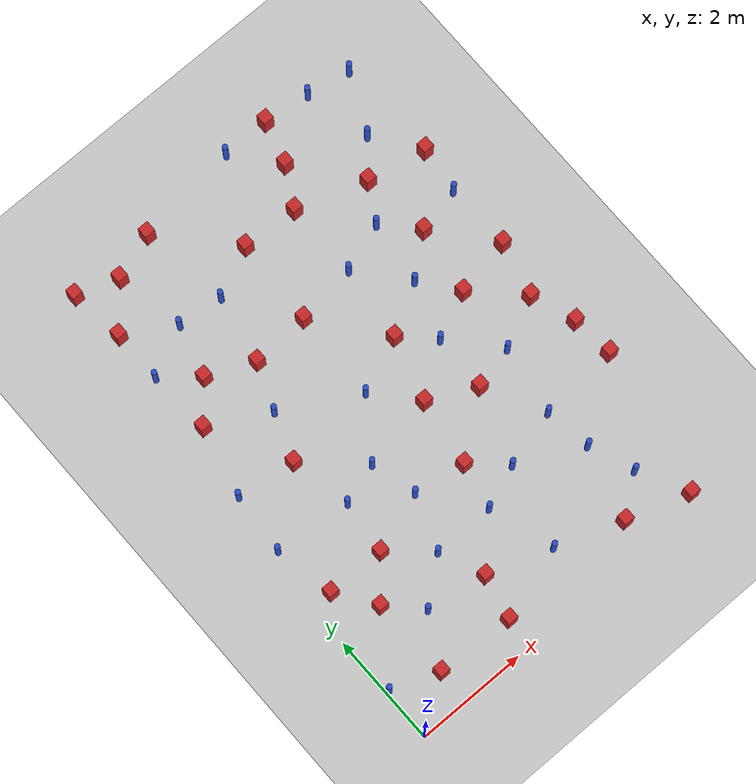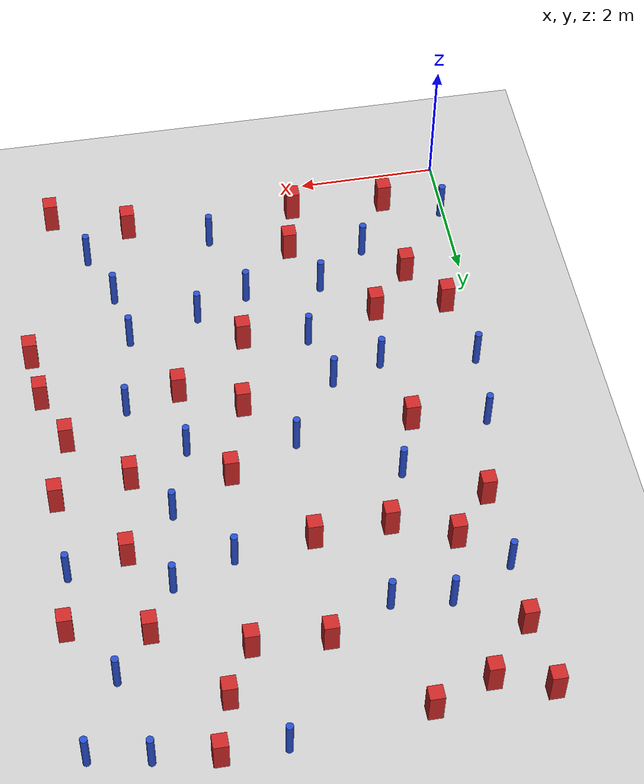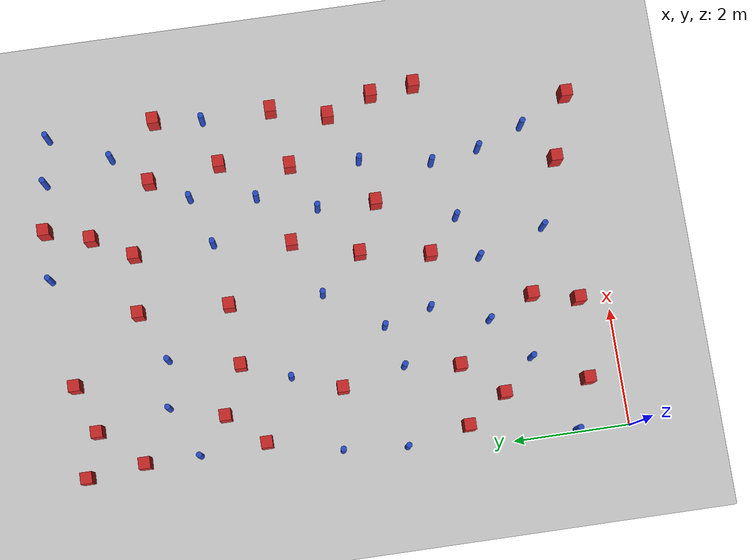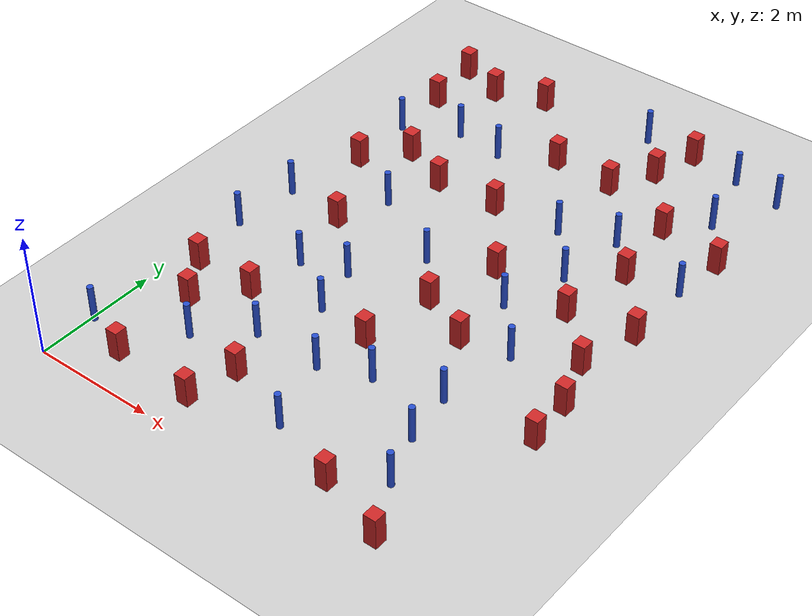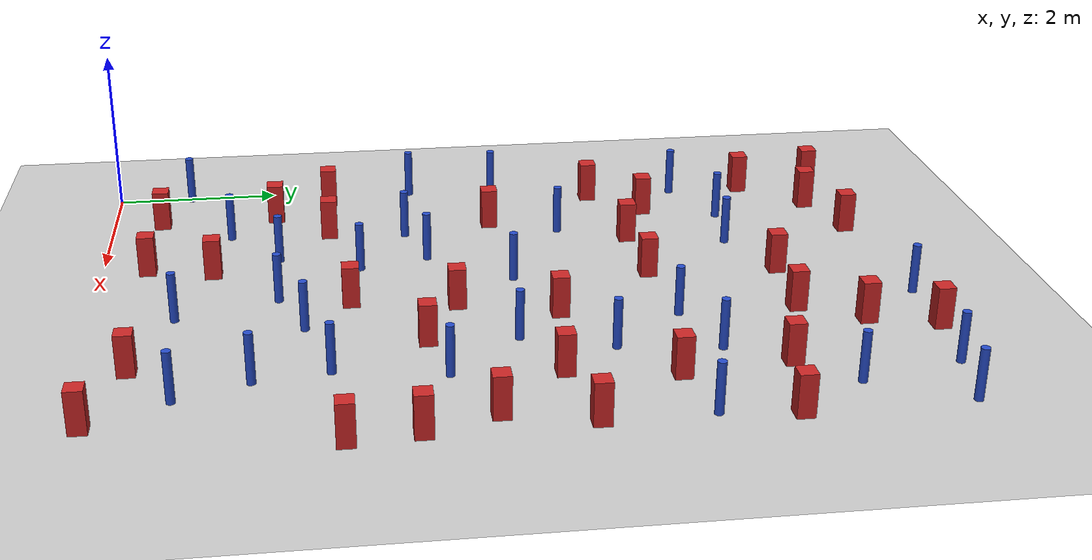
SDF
<sdf version="1.6">
 <world name="default">
  <model name="ground_plane">
   <static>1</static>
   <link name="link">
    <collision name="collision">
     <geometry><plane><normal>0 0 1</normal><size>100 100</size></plane></geometry>
     <surface><friction><ode><mu>100</mu><mu2>50</mu2></ode></friction></surface>
    </collision>
    <visual name="visual">
     <cast_shadows>0</cast_shadows>
     <geometry><plane><normal>0 0 1</normal><size>100 100</size></plane></geometry>
     <material>
      <script><uri>file://media/materials/scripts/gazebo.material</uri><name>Gazebo/Grey</name></script>
     </material>
    </visual>
   </link>
  </model>
  <model name="square_post_obstacle6">
   <static>0</static>
   <link name="link">
    <pose>0 0 0.25 0 -0 0</pose>
    <inertial>
     <mass>100</mass>
     <inertia>
      <ixx>0.166667</ixx>
      <ixy>0</ixy>
      <ixz>0</ixz>
      <iyy>0.166667</iyy>
      <iyz>0</iyz>
      <izz>0.166667</izz>
     </inertia>
    </inertial>
    <collision name="collision"><geometry><box><size>0.2 0.2 0.5</size></box></geometry></collision>
    <visual name="visual">
     <geometry><box><size>0.2 0.2 0.5</size></box></geometry>
     <material>
      <script><name>Gazebo/Red</name><uri>file://media/materials/scripts/gazebo.material</uri></script>
     </material>
    </visual>
   </link>
   <pose>5.26196 5.11522 0 -4e-06 1e-06 -0.000299</pose>
  </model>
  <model name="pole_obstacle6">
   <static>0</static>
   <link name="link">
    <pose>0 0 0.3 0 -0 0</pose>
    <inertial>
     <mass>1</mass>
     <inertia><ixx>0.145833</ixx><ixy>0</ixy><ixz>0</ixz><iyy>0.145833</iyy><iyz>0</iyz><izz>0.125</izz></inertia>
    </inertial>
    <collision name="collision">
     <geometry><cylinder><radius>0.05</radius><length>0.6</length></cylinder></geometry>
    </collision>
    <visual name="visual">
     <geometry><cylinder><radius>0.05</radius><length>0.6</length></cylinder></geometry>
     <material>
      <script><name>Gazebo/Blue</name><uri>file://media/materials/scripts/gazebo.material</uri></script>
     </material>
    </visual>
   </link>
   <pose>2.18299 7.62151 -5e-06 0 0 -8e-06</pose>
  </model>
  <model name="pole_obstacle7">
   <static>0</static>
   <link name="link">
    <pose>0 0 0.3 0 -0 0</pose>
    <inertial>
     <mass>1</mass>
     <inertia><ixx>0.145833</ixx><ixy>0</ixy><ixz>0</ixz><iyy>0.145833</iyy><iyz>0</iyz><izz>0.125</izz></inertia>
    </inertial>
    <collision name="collision">
     <geometry><cylinder><radius>0.05</radius><length>0.6</length></cylinder></geometry>
    </collision>
    <visual name="visual">
     <geometry><cylinder><radius>0.05</radius><length>0.6</length></cylinder></geometry>
     <material>
      <script><name>Gazebo/Blue</name><uri>file://media/materials/scripts/gazebo.material</uri></script>
     </material>
    </visual>
   </link>
   <pose>2.45431 3.07016 -5e-06 0 0 -1.5e-05</pose>
  </model>
  <model name="pole_obstacle8">
   <static>0</static>
   <link name="link">
    <pose>0 0 0.3 0 -0 0</pose>
    <inertial>
     <mass>1</mass>
     <inertia><ixx>0.145833</ixx><ixy>0</ixy><ixz>0</ixz><iyy>0.145833</iyy><iyz>0</iyz><izz>0.125</izz></inertia>
    </inertial>
    <collision name="collision">
     <geometry><cylinder><radius>0.05</radius><length>0.6</length></cylinder></geometry>
    </collision>
    <visual name="visual">
     <geometry><cylinder><radius>0.05</radius><length>0.6</length></cylinder></geometry>
     <material>
      <script><name>Gazebo/Blue</name><uri>file://media/materials/scripts/gazebo.material</uri></script>
     </material>
    </visual>
   </link>
   <pose>1.52208 3.65928 -5e-06 0 -0 1e-05</pose>
  </model>
  <model name="pole_obstacle12">
   <static>0</static>
   <link name="link">
    <pose>0 0 0.3 0 -0 0</pose>
    <inertial>
     <mass>1</mass>
     <inertia><ixx>0.145833</ixx><ixy>0</ixy><ixz>0</ixz><iyy>0.145833</iyy><iyz>0</iyz><izz>0.125</izz></inertia>
    </inertial>
    <collision name="collision">
     <geometry><cylinder><radius>0.05</radius><length>0.6</length></cylinder></geometry>
    </collision>
    <visual name="visual">
     <geometry><cylinder><radius>0.05</radius><length>0.6</length></cylinder></geometry>
     <material>
      <script><name>Gazebo/Blue</name><uri>file://media/materials/scripts/gazebo.material</uri></script>
     </material>
    </visual>
   </link>
   <pose>3.95517 2.39756 -5e-06 0 -0 1.3e-05</pose>
  </model>
  <model name="square_post_obstacle16">
   <static>0</static>
   <link name="link">
    <pose>0 0 0.25 0 -0 0</pose>
    <inertial>
     <mass>100</mass>
     <inertia>
      <ixx>0.166667</ixx>
      <ixy>0</ixy>
      <ixz>0</ixz>
      <iyy>0.166667</iyy>
      <iyz>0</iyz>
      <izz>0.166667</izz>
     </inertia>
    </inertial>
    <collision name="collision"><geometry><box><size>0.2 0.2 0.5</size></box></geometry></collision>
    <visual name="visual">
     <geometry><box><size>0.2 0.2 0.5</size></box></geometry>
     <material>
      <script><name>Gazebo/Red</name><uri>file://media/materials/scripts/gazebo.material</uri></script>
     </material>
    </visual>
   </link>
   <pose>6.39479 2.78555 0 -4e-06 1e-06 -0.000299</pose>
  </model>
  <model name="pole_obstacle20">
   <static>0</static>
   <link name="link">
    <pose>0 0 0.3 0 -0 0</pose>
    <inertial>
     <mass>1</mass>
     <inertia><ixx>0.145833</ixx><ixy>0</ixy><ixz>0</ixz><iyy>0.145833</iyy><iyz>0</iyz><izz>0.125</izz></inertia>
    </inertial>
    <collision name="collision">
     <geometry><cylinder><radius>0.05</radius><length>0.6</length></cylinder></geometry>
    </collision>
    <visual name="visual">
     <geometry><cylinder><radius>0.05</radius><length>0.6</length></cylinder></geometry>
     <material>
      <script><name>Gazebo/Blue</name><uri>file://media/materials/scripts/gazebo.material</uri></script>
     </material>
    </visual>
   </link>
   <pose>3.57013 0.94303 -5e-06 0 -0 2e-06</pose>
  </model>
  <model name="square_post_obstacle21">
   <static>0</static>
   <link name="link">
    <pose>0 0 0.25 0 -0 0</pose>
    <inertial>
     <mass>100</mass>
     <inertia>
      <ixx>0.166667</ixx>
      <ixy>0</ixy>
      <ixz>0</ixz>
      <iyy>0.166667</iyy>
      <iyz>0</iyz>
      <izz>0.166667</izz>
     </inertia>
    </inertial>
    <collision name="collision"><geometry><box><size>0.2 0.2 0.5</size></box></geometry></collision>
    <visual name="visual">
     <geometry><box><size>0.2 0.2 0.5</size></box></geometry>
     <material>
      <script><name>Gazebo/Red</name><uri>file://media/materials/scripts/gazebo.material</uri></script>
     </material>
    </visual>
   </link>
   <pose>6.29388 5.31356 0 -4e-06 1e-06 -0.000299</pose>
  </model>
  <model name="square_post_obstacle22">
   <static>0</static>
   <link name="link">
    <pose>0 0 0.25 0 -0 0</pose>
    <inertial>
     <mass>100</mass>
     <inertia>
      <ixx>0.166667</ixx>
      <ixy>0</ixy>
      <ixz>0</ixz>
      <iyy>0.166667</iyy>
      <iyz>0</iyz>
      <izz>0.166667</izz>
     </inertia>
    </inertial>
    <collision name="collision"><geometry><box><size>0.2 0.2 0.5</size></box></geometry></collision>
    <visual name="visual">
     <geometry><box><size>0.2 0.2 0.5</size></box></geometry>
     <material>
      <script><name>Gazebo/Red</name><uri>file://media/materials/scripts/gazebo.material</uri></script>
     </material>
    </visual>
   </link>
   <pose>1.95897 9.23439 0 -4e-06 1e-06 -0.000299</pose>
  </model>
  <model name="pole_obstacle24">
   <static>0</static>
   <link name="link">
    <pose>0 0 0.3 0 -0 0</pose>
    <inertial>
     <mass>1</mass>
     <inertia><ixx>0.145833</ixx><ixy>0</ixy><ixz>0</ixz><iyy>0.145833</iyy><iyz>0</iyz><izz>0.125</izz></inertia>
    </inertial>
    <collision name="collision">
     <geometry><cylinder><radius>0.05</radius><length>0.6</length></cylinder></geometry>
    </collision>
    <visual name="visual">
     <geometry><cylinder><radius>0.05</radius><length>0.6</length></cylinder></geometry>
     <material>
      <script><name>Gazebo/Blue</name><uri>file://media/materials/scripts/gazebo.material</uri></script>
     </material>
    </visual>
   </link>
   <pose>2.93959 4.86071 -5e-06 0 0 -8e-06</pose>
  </model>
  <model name="pole_obstacle28">
   <static>0</static>
   <link name="link">
    <pose>0 0 0.3 0 -0 0</pose>
    <inertial>
     <mass>1</mass>
     <inertia><ixx>0.145833</ixx><ixy>0</ixy><ixz>0</ixz><iyy>0.145833</iyy><iyz>0</iyz><izz>0.125</izz></inertia>
    </inertial>
    <collision name="collision">
     <geometry><cylinder><radius>0.05</radius><length>0.6</length></cylinder></geometry>
    </collision>
    <visual name="visual">
     <geometry><cylinder><radius>0.05</radius><length>0.6</length></cylinder></geometry>
     <material>
      <script><name>Gazebo/Blue</name><uri>file://media/materials/scripts/gazebo.material</uri></script>
     </material>
    </visual>
   </link>
   <pose>4.97068 2.67329 -5e-06 0 -0 1e-05</pose>
  </model>
  <model name="square_post_obstacle26">
   <static>0</static>
   <link name="link">
    <pose>0 0 0.25 0 -0 0</pose>
    <inertial>
     <mass>100</mass>
     <inertia>
      <ixx>0.166667</ixx>
      <ixy>0</ixy>
      <ixz>0</ixz>
      <iyy>0.166667</iyy>
      <iyz>0</iyz>
      <izz>0.166667</izz>
     </inertia>
    </inertial>
    <collision name="collision"><geometry><box><size>0.2 0.2 0.5</size></box></geometry></collision>
    <visual name="visual">
     <geometry><box><size>0.2 0.2 0.5</size></box></geometry>
     <material>
      <script><name>Gazebo/Red</name><uri>file://media/materials/scripts/gazebo.material</uri></script>
     </material>
    </visual>
   </link>
   <pose>4.68687 9.44771 0 -4e-06 1e-06 -0.000299</pose>
  </model>
  <model name="square_post_obstacle28">
   <static>0</static>
   <link name="link">
    <pose>0 0 0.25 0 -0 0</pose>
    <inertial>
     <mass>100</mass>
     <inertia>
      <ixx>0.166667</ixx>
      <ixy>0</ixy>
      <ixz>0</ixz>
      <iyy>0.166667</iyy>
      <iyz>0</iyz>
      <izz>0.166667</izz>
     </inertia>
    </inertial>
    <collision name="collision"><geometry><box><size>0.2 0.2 0.5</size></box></geometry></collision>
    <visual name="visual">
     <geometry><box><size>0.2 0.2 0.5</size></box></geometry>
     <material>
      <script><name>Gazebo/Red</name><uri>file://media/materials/scripts/gazebo.material</uri></script>
     </material>
    </visual>
   </link>
   <pose>4.45696 8.67659 0 -4e-06 1e-06 -0.000299</pose>
  </model>
  <model name="square_post_obstacle29">
   <static>0</static>
   <link name="link">
    <pose>0 0 0.25 0 -0 0</pose>
    <inertial>
     <mass>100</mass>
     <inertia>
      <ixx>0.166667</ixx>
      <ixy>0</ixy>
      <ixz>0</ixz>
      <iyy>0.166667</iyy>
      <iyz>0</iyz>
      <izz>0.166667</izz>
     </inertia>
    </inertial>
    <collision name="collision"><geometry><box><size>0.2 0.2 0.5</size></box></geometry></collision>
    <visual name="visual">
     <geometry><box><size>0.2 0.2 0.5</size></box></geometry>
     <material>
      <script><name>Gazebo/Red</name><uri>file://media/materials/scripts/gazebo.material</uri></script>
     </material>
    </visual>
   </link>
   <pose>0.372643 2.73219 0 -4e-06 1e-06 -0.000299</pose>
  </model>
  <model name="pole_obstacle30">
   <static>0</static>
   <link name="link">
    <pose>0 0 0.3 0 -0 0</pose>
    <inertial>
     <mass>1</mass>
     <inertia><ixx>0.145833</ixx><ixy>0</ixy><ixz>0</ixz><iyy>0.145833</iyy><iyz>0</iyz><izz>0.125</izz></inertia>
    </inertial>
    <collision name="collision">
     <geometry><cylinder><radius>0.05</radius><length>0.6</length></cylinder></geometry>
    </collision>
    <visual name="visual">
     <geometry><cylinder><radius>0.05</radius><length>0.6</length></cylinder></geometry>
     <material>
      <script><name>Gazebo/Blue</name><uri>file://media/materials/scripts/gazebo.material</uri></script>
     </material>
    </visual>
   </link>
   <pose>1.60497 5.58912 -5e-06 0 0 -3.9e-05</pose>
  </model>
  <model name="square_post_obstacle33">
   <static>0</static>
   <link name="link">
    <pose>0 0 0.25 0 -0 0</pose>
    <inertial>
     <mass>100</mass>
     <inertia>
      <ixx>0.166667</ixx>
      <ixy>0</ixy>
      <ixz>0</ixz>
      <iyy>0.166667</iyy>
      <iyz>0</iyz>
      <izz>0.166667</izz>
     </inertia>
    </inertial>
    <collision name="collision"><geometry><box><size>0.2 0.2 0.5</size></box></geometry></collision>
    <visual name="visual">
     <geometry><box><size>0.2 0.2 0.5</size></box></geometry>
     <material>
      <script><name>Gazebo/Red</name><uri>file://media/materials/scripts/gazebo.material</uri></script>
     </material>
    </visual>
   </link>
   <pose>3.90873 5.26894 0 -4e-06 1e-06 -0.000299</pose>
  </model>
  <model name="square_post_obstacle39">
   <static>0</static>
   <link name="link">
    <pose>0 0 0.25 0 -0 0</pose>
    <inertial>
     <mass>100</mass>
     <inertia>
      <ixx>0.166667</ixx>
      <ixy>0</ixy>
      <ixz>0</ixz>
      <iyy>0.166667</iyy>
      <iyz>0</iyz>
      <izz>0.166667</izz>
     </inertia>
    </inertial>
    <collision name="collision"><geometry><box><size>0.2 0.2 0.5</size></box></geometry></collision>
    <visual name="visual">
     <geometry><box><size>0.2 0.2 0.5</size></box></geometry>
     <material>
      <script><name>Gazebo/Red</name><uri>file://media/materials/scripts/gazebo.material</uri></script>
     </material>
    </visual>
   </link>
   <pose>0.880833 0.609658 0 -4e-06 1e-06 -0.000299</pose>
  </model>
  <model name="square_post_obstacle40">
   <static>0</static>
   <link name="link">
    <pose>0 0 0.25 0 -0 0</pose>
    <inertial>
     <mass>100</mass>
     <inertia>
      <ixx>0.166667</ixx>
      <ixy>0</ixy>
      <ixz>0</ixz>
      <iyy>0.166667</iyy>
      <iyz>0</iyz>
      <izz>0.166667</izz>
     </inertia>
    </inertial>
    <collision name="collision"><geometry><box><size>0.2 0.2 0.5</size></box></geometry></collision>
    <visual name="visual">
     <geometry><box><size>0.2 0.2 0.5</size></box></geometry>
     <material>
      <script><name>Gazebo/Red</name><uri>file://media/materials/scripts/gazebo.material</uri></script>
     </material>
    </visual>
   </link>
   <pose>3.56815 4.13191 0 -4e-06 1e-06 -0.000299</pose>
  </model>
  <model name="pole_obstacle40">
   <static>0</static>
   <link name="link">
    <pose>0 0 0.3 0 -0 0</pose>
    <inertial>
     <mass>1</mass>
     <inertia><ixx>0.145833</ixx><ixy>0</ixy><ixz>0</ixz><iyy>0.145833</iyy><iyz>0</iyz><izz>0.125</izz></inertia>
    </inertial>
    <collision name="collision">
     <geometry><cylinder><radius>0.05</radius><length>0.6</length></cylinder></geometry>
    </collision>
    <visual name="visual">
     <geometry><cylinder><radius>0.05</radius><length>0.6</length></cylinder></geometry>
     <material>
      <script><name>Gazebo/Blue</name><uri>file://media/materials/scripts/gazebo.material</uri></script>
     </material>
    </visual>
   </link>
   <pose>5.81154 8.16568 -5e-06 0 -0 2.1e-05</pose>
  </model>
  <model name="pole_obstacle42">
   <static>0</static>
   <link name="link">
    <pose>0 0 0.3 0 -0 0</pose>
    <inertial>
     <mass>1</mass>
     <inertia><ixx>0.145833</ixx><ixy>0</ixy><ixz>0</ixz><iyy>0.145833</iyy><iyz>0</iyz><izz>0.125</izz></inertia>
    </inertial>
    <collision name="collision">
     <geometry><cylinder><radius>0.05</radius><length>0.6</length></cylinder></geometry>
    </collision>
    <visual name="visual">
     <geometry><cylinder><radius>0.05</radius><length>0.6</length></cylinder></geometry>
     <material>
      <script><name>Gazebo/Blue</name><uri>file://media/materials/scripts/gazebo.material</uri></script>
     </material>
    </visual>
   </link>
   <pose>0.0521 0.922775 -6e-06 0 0 -5e-05</pose>
  </model>
  <model name="pole_obstacle44">
   <static>0</static>
   <link name="link">
    <pose>0 0 0.3 0 -0 0</pose>
    <inertial>
     <mass>1</mass>
     <inertia><ixx>0.145833</ixx><ixy>0</ixy><ixz>0</ixz><iyy>0.145833</iyy><iyz>0</iyz><izz>0.125</izz></inertia>
    </inertial>
    <collision name="collision">
     <geometry><cylinder><radius>0.05</radius><length>0.6</length></cylinder></geometry>
    </collision>
    <visual name="visual">
     <geometry><cylinder><radius>0.05</radius><length>0.6</length></cylinder></geometry>
     <material>
      <script><name>Gazebo/Blue</name><uri>file://media/materials/scripts/gazebo.material</uri></script>
     </material>
    </visual>
   </link>
   <pose>0.504518 7.28607 -5e-06 0 0 -1.4e-05</pose>
  </model>
  <model name="square_post_obstacle45">
   <static>0</static>
   <link name="link">
    <pose>0 0 0.25 0 -0 0</pose>
    <inertial>
     <mass>100</mass>
     <inertia>
      <ixx>0.166667</ixx>
      <ixy>0</ixy>
      <ixz>0</ixz>
      <iyy>0.166667</iyy>
      <iyz>0</iyz>
      <izz>0.166667</izz>
     </inertia>
    </inertial>
    <collision name="collision"><geometry><box><size>0.2 0.2 0.5</size></box></geometry></collision>
    <visual name="visual">
     <geometry><box><size>0.2 0.2 0.5</size></box></geometry>
     <material>
      <script><name>Gazebo/Red</name><uri>file://media/materials/scripts/gazebo.material</uri></script>
     </material>
    </visual>
   </link>
   <pose>5.45671 6.32822 0 -4e-06 1e-06 -0.000299</pose>
  </model>
  <model name="square_post_obstacle48">
   <static>0</static>
   <link name="link">
    <pose>0 0 0.25 0 -0 0</pose>
    <inertial>
     <mass>100</mass>
     <inertia>
      <ixx>0.166667</ixx>
      <ixy>0</ixy>
      <ixz>0</ixz>
      <iyy>0.166667</iyy>
      <iyz>0</iyz>
      <izz>0.166667</izz>
     </inertia>
    </inertial>
    <collision name="collision"><geometry><box><size>0.2 0.2 0.5</size></box></geometry></collision>
    <visual name="visual">
     <geometry><box><size>0.2 0.2 0.5</size></box></geometry>
     <material>
      <script><name>Gazebo/Red</name><uri>file://media/materials/scripts/gazebo.material</uri></script>
     </material>
    </visual>
   </link>
   <pose>6.32708 3.54568 0 -4e-06 1e-06 -0.000299</pose>
  </model>
  <model name="square_post_obstacle49">
   <static>0</static>
   <link name="link">
    <pose>0 0 0.25 0 -0 0</pose>
    <inertial>
     <mass>100</mass>
     <inertia>
      <ixx>0.166667</ixx>
      <ixy>0</ixy>
      <ixz>0</ixz>
      <iyy>0.166667</iyy>
      <iyz>0</iyz>
      <izz>0.166667</izz>
     </inertia>
    </inertial>
    <collision name="collision"><geometry><box><size>0.2 0.2 0.5</size></box></geometry></collision>
    <visual name="visual">
     <geometry><box><size>0.2 0.2 0.5</size></box></geometry>
     <material>
      <script><name>Gazebo/Red</name><uri>file://media/materials/scripts/gazebo.material</uri></script>
     </material>
    </visual>
   </link>
   <pose>0.565637 6.14735 0 -4e-06 1e-06 -0.000299</pose>
  </model>
  <model name="pole_obstacle47">
   <static>0</static>
   <link name="link">
    <pose>0 0 0.3 0 -0 0</pose>
    <inertial>
     <mass>1</mass>
     <inertia><ixx>0.145833</ixx><ixy>0</ixy><ixz>0</ixz><iyy>0.145833</iyy><iyz>0</iyz><izz>0.125</izz></inertia>
    </inertial>
    <collision name="collision">
     <geometry><cylinder><radius>0.05</radius><length>0.6</length></cylinder></geometry>
    </collision>
    <visual name="visual">
     <geometry><cylinder><radius>0.05</radius><length>0.6</length></cylinder></geometry>
     <material>
      <script><name>Gazebo/Blue</name><uri>file://media/materials/scripts/gazebo.material</uri></script>
     </material>
    </visual>
   </link>
   <pose>1.36773 1.49698 -5e-06 0 0 -1.4e-05</pose>
  </model>
  <model name="square_post_obstacle51">
   <static>0</static>
   <link name="link">
    <pose>0 0 0.25 0 -0 0</pose>
    <inertial>
     <mass>100</mass>
     <inertia>
      <ixx>0.166667</ixx>
      <ixy>0</ixy>
      <ixz>0</ixz>
      <iyy>0.166667</iyy>
      <iyz>0</iyz>
      <izz>0.166667</izz>
     </inertia>
    </inertial>
    <collision name="collision"><geometry><box><size>0.2 0.2 0.5</size></box></geometry></collision>
    <visual name="visual">
     <geometry><box><size>0.2 0.2 0.5</size></box></geometry>
     <material>
      <script><name>Gazebo/Red</name><uri>file://media/materials/scripts/gazebo.material</uri></script>
     </material>
    </visual>
   </link>
   <pose>2.98259 6.47116 0 -4e-06 1e-06 -0.000299</pose>
  </model>
  <model name="square_post_obstacle53">
   <static>0</static>
   <link name="link">
    <pose>0 0 0.25 0 -0 0</pose>
    <inertial>
     <mass>100</mass>
     <inertia>
      <ixx>0.166667</ixx>
      <ixy>0</ixy>
      <ixz>0</ixz>
      <iyy>0.166667</iyy>
      <iyz>0</iyz>
      <izz>0.166667</izz>
     </inertia>
    </inertial>
    <collision name="collision"><geometry><box><size>0.2 0.2 0.5</size></box></geometry></collision>
    <visual name="visual">
     <geometry><box><size>0.2 0.2 0.5</size></box></geometry>
     <material>
      <script><name>Gazebo/Red</name><uri>file://media/materials/scripts/gazebo.material</uri></script>
     </material>
    </visual>
   </link>
   <pose>3.05359 8.02437 0 -4e-06 1e-06 -0.000299</pose>
  </model>
  <model name="pole_obstacle59">
   <static>0</static>
   <link name="link">
    <pose>0 0 0.3 0 -0 0</pose>
    <inertial>
     <mass>1</mass>
     <inertia><ixx>0.145833</ixx><ixy>0</ixy><ixz>0</ixz><iyy>0.145833</iyy><iyz>0</iyz><izz>0.125</izz></inertia>
    </inertial>
    <collision name="collision">
     <geometry><cylinder><radius>0.05</radius><length>0.6</length></cylinder></geometry>
    </collision>
    <visual name="visual">
     <geometry><cylinder><radius>0.05</radius><length>0.6</length></cylinder></geometry>
     <material>
      <script><name>Gazebo/Blue</name><uri>file://media/materials/scripts/gazebo.material</uri></script>
     </material>
    </visual>
   </link>
   <pose>5.17397 3.91084 -5e-06 0 0 -2e-06</pose>
  </model>
  <model name="square_post_obstacle60">
   <static>0</static>
   <link name="link">
    <pose>0 0 0.25 0 -0 0</pose>
    <inertial>
     <mass>100</mass>
     <inertia>
      <ixx>0.166667</ixx>
      <ixy>0</ixy>
      <ixz>0</ixz>
      <iyy>0.166667</iyy>
      <iyz>0</iyz>
      <izz>0.166667</izz>
     </inertia>
    </inertial>
    <collision name="collision"><geometry><box><size>0.2 0.2 0.5</size></box></geometry></collision>
    <visual name="visual">
     <geometry><box><size>0.2 0.2 0.5</size></box></geometry>
     <material>
      <script><name>Gazebo/Red</name><uri>file://media/materials/scripts/gazebo.material</uri></script>
     </material>
    </visual>
   </link>
   <pose>1.30662 4.74991 0 -4e-06 1e-06 -0.000299</pose>
  </model>
  <model name="pole_obstacle66">
   <static>0</static>
   <link name="link">
    <pose>0 0 0.3 0 -0 0</pose>
    <inertial>
     <mass>1</mass>
     <inertia><ixx>0.145833</ixx><ixy>0</ixy><ixz>0</ixz><iyy>0.145833</iyy><iyz>0</iyz><izz>0.125</izz></inertia>
    </inertial>
    <collision name="collision">
     <geometry><cylinder><radius>0.05</radius><length>0.6</length></cylinder></geometry>
    </collision>
    <visual name="visual">
     <geometry><cylinder><radius>0.05</radius><length>0.6</length></cylinder></geometry>
     <material>
      <script><name>Gazebo/Blue</name><uri>file://media/materials/scripts/gazebo.material</uri></script>
     </material>
    </visual>
   </link>
   <pose>5.39848 1.03562 -5e-06 0 -0 2.4e-05</pose>
  </model>
  <model name="square_post_obstacle63">
   <static>0</static>
   <link name="link">
    <pose>0 0 0.25 0 -0 0</pose>
    <inertial>
     <mass>100</mass>
     <inertia>
      <ixx>0.166667</ixx>
      <ixy>0</ixy>
      <ixz>0</ixz>
      <iyy>0.166667</iyy>
      <iyz>0</iyz>
      <izz>0.166667</izz>
     </inertia>
    </inertial>
    <collision name="collision"><geometry><box><size>0.2 0.2 0.5</size></box></geometry></collision>
    <visual name="visual">
     <geometry><box><size>0.2 0.2 0.5</size></box></geometry>
     <material>
      <script><name>Gazebo/Red</name><uri>file://media/materials/scripts/gazebo.material</uri></script>
     </material>
    </visual>
   </link>
   <pose>4.4172 3.73209 0 -4e-06 1e-06 -0.000299</pose>
  </model>
  <model name="pole_obstacle67">
   <static>0</static>
   <link name="link">
    <pose>0 0 0.3 0 -0 0</pose>
    <inertial>
     <mass>1</mass>
     <inertia><ixx>0.145833</ixx><ixy>0</ixy><ixz>0</ixz><iyy>0.145833</iyy><iyz>0</iyz><izz>0.125</izz></inertia>
    </inertial>
    <collision name="collision">
     <geometry><cylinder><radius>0.05</radius><length>0.6</length></cylinder></geometry>
    </collision>
    <visual name="visual">
     <geometry><cylinder><radius>0.05</radius><length>0.6</length></cylinder></geometry>
     <material>
      <script><name>Gazebo/Blue</name><uri>file://media/materials/scripts/gazebo.material</uri></script>
     </material>
    </visual>
   </link>
   <pose>5.5229 9.34837 -5e-06 0 -0 2.1e-05</pose>
  </model>
  <model name="square_post_obstacle65">
   <static>0</static>
   <link name="link">
    <pose>0 0 0.25 0 -0 0</pose>
    <inertial>
     <mass>100</mass>
     <inertia>
      <ixx>0.166667</ixx>
      <ixy>0</ixy>
      <ixz>0</ixz>
      <iyy>0.166667</iyy>
      <iyz>0</iyz>
      <izz>0.166667</izz>
     </inertia>
    </inertial>
    <collision name="collision"><geometry><box><size>0.2 0.2 0.5</size></box></geometry></collision>
    <visual name="visual">
     <geometry><box><size>0.2 0.2 0.5</size></box></geometry>
     <material>
      <script><name>Gazebo/Red</name><uri>file://media/materials/scripts/gazebo.material</uri></script>
     </material>
    </visual>
   </link>
   <pose>0.396913 9.20533 0 -4e-06 1e-06 -0.000299</pose>
  </model>
  <model name="pole_obstacle68">
   <static>0</static>
   <link name="link">
    <pose>0 0 0.3 0 -0 0</pose>
    <inertial>
     <mass>1</mass>
     <inertia><ixx>0.145833</ixx><ixy>0</ixy><ixz>0</ixz><iyy>0.145833</iyy><iyz>0</iyz><izz>0.125</izz></inertia>
    </inertial>
    <collision name="collision">
     <geometry><cylinder><radius>0.05</radius><length>0.6</length></cylinder></geometry>
    </collision>
    <visual name="visual">
     <geometry><cylinder><radius>0.05</radius><length>0.6</length></cylinder></geometry>
     <material>
      <script><name>Gazebo/Blue</name><uri>file://media/materials/scripts/gazebo.material</uri></script>
     </material>
    </visual>
   </link>
   <pose>3.82892 9.44918 -5e-06 0 0 -7.1e-05</pose>
  </model>
  <model name="square_post_obstacle67">
   <static>0</static>
   <link name="link">
    <pose>0 0 0.25 0 -0 0</pose>
    <inertial>
     <mass>100</mass>
     <inertia>
      <ixx>0.166667</ixx>
      <ixy>0</ixy>
      <ixz>0</ixz>
      <iyy>0.166667</iyy>
      <iyz>0</iyz>
      <izz>0.166667</izz>
     </inertia>
    </inertial>
    <collision name="collision"><geometry><box><size>0.2 0.2 0.5</size></box></geometry></collision>
    <visual name="visual">
     <geometry><box><size>0.2 0.2 0.5</size></box></geometry>
     <material>
      <script><name>Gazebo/Red</name><uri>file://media/materials/scripts/gazebo.material</uri></script>
     </material>
    </visual>
   </link>
   <pose>4.73687 0.534152 0 -4e-06 1e-06 -0.000299</pose>
  </model>
  <model name="square_post_obstacle73">
   <static>0</static>
   <link name="link">
    <pose>0 0 0.25 0 -0 0</pose>
    <inertial>
     <mass>100</mass>
     <inertia>
      <ixx>0.166667</ixx>
      <ixy>0</ixy>
      <ixz>0</ixz>
      <iyy>0.166667</iyy>
      <iyz>0</iyz>
      <izz>0.166667</izz>
     </inertia>
    </inertial>
    <collision name="collision"><geometry><box><size>0.2 0.2 0.5</size></box></geometry></collision>
    <visual name="visual">
     <geometry><box><size>0.2 0.2 0.5</size></box></geometry>
     <material>
      <script><name>Gazebo/Red</name><uri>file://media/materials/scripts/gazebo.material</uri></script>
     </material>
    </visual>
   </link>
   <pose>0.509236 8.21734 0 -4e-06 1e-06 -0.000299</pose>
  </model>
  <model name="pole_obstacle81">
   <static>0</static>
   <link name="link">
    <pose>0 0 0.3 0 -0 0</pose>
    <inertial>
     <mass>1</mass>
     <inertia><ixx>0.145833</ixx><ixy>0</ixy><ixz>0</ixz><iyy>0.145833</iyy><iyz>0</iyz><izz>0.125</izz></inertia>
    </inertial>
    <collision name="collision">
     <geometry><cylinder><radius>0.05</radius><length>0.6</length></cylinder></geometry>
    </collision>
    <visual name="visual">
     <geometry><cylinder><radius>0.05</radius><length>0.6</length></cylinder></geometry>
     <material>
      <script><name>Gazebo/Blue</name><uri>file://media/materials/scripts/gazebo.material</uri></script>
     </material>
    </visual>
   </link>
   <pose>6.3141 9.21451 -5e-06 0 -0 2.1e-05</pose>
  </model>
  <model name="square_post_obstacle91">
   <static>0</static>
   <link name="link">
    <pose>0 0 0.25 0 -0 0</pose>
    <inertial>
     <mass>100</mass>
     <inertia>
      <ixx>0.166667</ixx>
      <ixy>0</ixy>
      <ixz>0</ixz>
      <iyy>0.166667</iyy>
      <iyz>0</iyz>
      <izz>0.166667</izz>
     </inertia>
    </inertial>
    <collision name="collision"><geometry><box><size>0.2 0.2 0.5</size></box></geometry></collision>
    <visual name="visual">
     <geometry><box><size>0.2 0.2 0.5</size></box></geometry>
     <material>
      <script><name>Gazebo/Red</name><uri>file://media/materials/scripts/gazebo.material</uri></script>
     </material>
    </visual>
   </link>
   <pose>6.05166 4.34294 0 -4e-06 1e-06 -0.000299</pose>
  </model>
  <model name="pole_obstacle86">
   <static>0</static>
   <link name="link">
    <pose>0 0 0.3 0 -0 0</pose>
    <inertial>
     <mass>1</mass>
     <inertia><ixx>0.145833</ixx><ixy>0</ixy><ixz>0</ixz><iyy>0.145833</iyy><iyz>0</iyz><izz>0.125</izz></inertia>
    </inertial>
    <collision name="collision">
     <geometry><cylinder><radius>0.05</radius><length>0.6</length></cylinder></geometry>
    </collision>
    <visual name="visual">
     <geometry><cylinder><radius>0.05</radius><length>0.6</length></cylinder></geometry>
     <material>
      <script><name>Gazebo/Blue</name><uri>file://media/materials/scripts/gazebo.material</uri></script>
     </material>
    </visual>
   </link>
   <pose>4.06939 6.60686 -5e-06 0 0 -6.4e-05</pose>
  </model>
  <model name="pole_obstacle87">
   <static>0</static>
   <link name="link">
    <pose>0 0 0.3 0 -0 0</pose>
    <inertial>
     <mass>1</mass>
     <inertia><ixx>0.145833</ixx><ixy>0</ixy><ixz>0</ixz><iyy>0.145833</iyy><iyz>0</iyz><izz>0.125</izz></inertia>
    </inertial>
    <collision name="collision">
     <geometry><cylinder><radius>0.05</radius><length>0.6</length></cylinder></geometry>
    </collision>
    <visual name="visual">
     <geometry><cylinder><radius>0.05</radius><length>0.6</length></cylinder></geometry>
     <material>
      <script><name>Gazebo/Blue</name><uri>file://media/materials/scripts/gazebo.material</uri></script>
     </material>
    </visual>
   </link>
   <pose>4.92516 6.90507 -5e-06 0 0 -6.5e-05</pose>
  </model>
  <model name="pole_obstacle88">
   <static>0</static>
   <link name="link">
    <pose>0 0 0.3 0 -0 0</pose>
    <inertial>
     <mass>1</mass>
     <inertia><ixx>0.145833</ixx><ixy>0</ixy><ixz>0</ixz><iyy>0.145833</iyy><iyz>0</iyz><izz>0.125</izz></inertia>
    </inertial>
    <collision name="collision">
     <geometry><cylinder><radius>0.05</radius><length>0.6</length></cylinder></geometry>
    </collision>
    <visual name="visual">
     <geometry><cylinder><radius>0.05</radius><length>0.6</length></cylinder></geometry>
     <material>
      <script><name>Gazebo/Blue</name><uri>file://media/materials/scripts/gazebo.material</uri></script>
     </material>
    </visual>
   </link>
   <pose>3.20165 2.10429 -5e-06 0 0 -3.9e-05</pose>
  </model>
  <model name="square_post_obstacle93">
   <static>0</static>
   <link name="link">
    <pose>0 0 0.25 0 -0 0</pose>
    <inertial>
     <mass>100</mass>
     <inertia>
      <ixx>0.166667</ixx>
      <ixy>0</ixy>
      <ixz>0</ixz>
      <iyy>0.166667</iyy>
      <iyz>0</iyz>
      <izz>0.166667</izz>
     </inertia>
    </inertial>
    <collision name="collision"><geometry><box><size>0.2 0.2 0.5</size></box></geometry></collision>
    <visual name="visual">
     <geometry><box><size>0.2 0.2 0.5</size></box></geometry>
     <material>
      <script><name>Gazebo/Red</name><uri>file://media/materials/scripts/gazebo.material</uri></script>
     </material>
    </visual>
   </link>
   <pose>4.06791 7.97684 0 -4e-06 1e-06 -0.000299</pose>
  </model>
  <model name="pole_obstacle94">
   <static>0</static>
   <link name="link">
    <pose>0 0 0.3 0 -0 0</pose>
    <inertial>
     <mass>1</mass>
     <inertia><ixx>0.145833</ixx><ixy>0</ixy><ixz>0</ixz><iyy>0.145833</iyy><iyz>0</iyz><izz>0.125</izz></inertia>
    </inertial>
    <collision name="collision">
     <geometry><cylinder><radius>0.05</radius><length>0.6</length></cylinder></geometry>
    </collision>
    <visual name="visual">
     <geometry><cylinder><radius>0.05</radius><length>0.6</length></cylinder></geometry>
     <material>
      <script><name>Gazebo/Blue</name><uri>file://media/materials/scripts/gazebo.material</uri></script>
     </material>
    </visual>
   </link>
   <pose>1.37204 7.70834 -5e-06 0 -0 1.1e-05</pose>
  </model>
  <model name="pole_obstacle97">
   <static>0</static>
   <link name="link">
    <pose>0 0 0.3 0 -0 0</pose>
    <inertial>
     <mass>1</mass>
     <inertia><ixx>0.145833</ixx><ixy>0</ixy><ixz>0</ixz><iyy>0.145833</iyy><iyz>0</iyz><izz>0.125</izz></inertia>
    </inertial>
    <collision name="collision">
     <geometry><cylinder><radius>0.05</radius><length>0.6</length></cylinder></geometry>
    </collision>
    <visual name="visual">
     <geometry><cylinder><radius>0.05</radius><length>0.6</length></cylinder></geometry>
     <material>
      <script><name>Gazebo/Blue</name><uri>file://media/materials/scripts/gazebo.material</uri></script>
     </material>
    </visual>
   </link>
   <pose>0.164551 3.80045 -5e-06 0 0 -4e-06</pose>
  </model>
  <model name="pole_obstacle99">
   <static>0</static>
   <link name="link">
    <pose>0 0 0.3 0 -0 0</pose>
    <inertial>
     <mass>1</mass>
     <inertia><ixx>0.145833</ixx><ixy>0</ixy><ixz>0</ixz><iyy>0.145833</iyy><iyz>0</iyz><izz>0.125</izz></inertia>
    </inertial>
    <collision name="collision">
     <geometry><cylinder><radius>0.05</radius><length>0.6</length></cylinder></geometry>
    </collision>
    <visual name="visual">
     <geometry><cylinder><radius>0.05</radius><length>0.6</length></cylinder></geometry>
     <material>
      <script><name>Gazebo/Blue</name><uri>file://media/materials/scripts/gazebo.material</uri></script>
     </material>
    </visual>
   </link>
   <pose>2.2427 3.88878 -5e-06 0 0 -3.9e-05</pose>
  </model>
  <model name="square_post_obstacle97">
   <static>0</static>
   <link name="link">
    <pose>0 0 0.25 0 -0 0</pose>
    <inertial>
     <mass>100</mass>
     <inertia>
      <ixx>0.166667</ixx>
      <ixy>0</ixy>
      <ixz>0</ixz>
      <iyy>0.166667</iyy>
      <iyz>0</iyz>
      <izz>0.166667</izz>
     </inertia>
    </inertial>
    <collision name="collision"><geometry><box><size>0.2 0.2 0.5</size></box></geometry></collision>
    <visual name="visual">
     <geometry><box><size>0.2 0.2 0.5</size></box></geometry>
     <material>
      <script><name>Gazebo/Red</name><uri>file://media/materials/scripts/gazebo.material</uri></script>
     </material>
    </visual>
   </link>
   <pose>1.41131 2.71705 0 -4e-06 1e-06 -0.000299</pose>
  </model>
  <model name="square_post_obstacle103">
   <static>0</static>
   <link name="link">
    <pose>0 0 0.25 0 -0 0</pose>
    <inertial>
     <mass>100</mass>
     <inertia>
      <ixx>0.166667</ixx>
      <ixy>0</ixy>
      <ixz>0</ixz>
      <iyy>0.166667</iyy>
      <iyz>0</iyz>
      <izz>0.166667</izz>
     </inertia>
    </inertial>
    <collision name="collision"><geometry><box><size>0.2 0.2 0.5</size></box></geometry></collision>
    <visual name="visual">
     <geometry><box><size>0.2 0.2 0.5</size></box></geometry>
     <material>
      <script><name>Gazebo/Red</name><uri>file://media/materials/scripts/gazebo.material</uri></script>
     </material>
    </visual>
   </link>
   <pose>2.25686 0.540825 0 -4e-06 1e-06 -0.000299</pose>
  </model>
  <model name="square_post_obstacle105">
   <static>0</static>
   <link name="link">
    <pose>0 0 0.25 0 -0 0</pose>
    <inertial>
     <mass>100</mass>
     <inertia>
      <ixx>0.166667</ixx>
      <ixy>0</ixy>
      <ixz>0</ixz>
      <iyy>0.166667</iyy>
      <iyz>0</iyz>
      <izz>0.166667</izz>
     </inertia>
    </inertial>
    <collision name="collision"><geometry><box><size>0.2 0.2 0.5</size></box></geometry></collision>
    <visual name="visual">
     <geometry><box><size>0.2 0.2 0.5</size></box></geometry>
     <material>
      <script><name>Gazebo/Red</name><uri>file://media/materials/scripts/gazebo.material</uri></script>
     </material>
    </visual>
   </link>
   <pose>3.38088 2.92859 0 -4e-06 1e-06 -0.000299</pose>
  </model>
  <model name="pole_obstacle102">
   <static>0</static>
   <link name="link">
    <pose>0 0 0.3 0 -0 0</pose>
    <inertial>
     <mass>1</mass>
     <inertia><ixx>0.145833</ixx><ixy>0</ixy><ixz>0</ixz><iyy>0.145833</iyy><iyz>0</iyz><izz>0.125</izz></inertia>
    </inertial>
    <collision name="collision">
     <geometry><cylinder><radius>0.05</radius><length>0.6</length></cylinder></geometry>
    </collision>
    <visual name="visual">
     <geometry><cylinder><radius>0.05</radius><length>0.6</length></cylinder></geometry>
     <material>
      <script><name>Gazebo/Blue</name><uri>file://media/materials/scripts/gazebo.material</uri></script>
     </material>
    </visual>
   </link>
   <pose>6.26799 6.51592 -5e-06 0 -0 5e-06</pose>
  </model>
  <model name="pole_obstacle103">
   <static>0</static>
   <link name="link">
    <pose>0 0 0.3 0 -0 0</pose>
    <inertial>
     <mass>1</mass>
     <inertia><ixx>0.145833</ixx><ixy>0</ixy><ixz>0</ixz><iyy>0.145833</iyy><iyz>0</iyz><izz>0.125</izz></inertia>
    </inertial>
    <collision name="collision">
     <geometry><cylinder><radius>0.05</radius><length>0.6</length></cylinder></geometry>
    </collision>
    <visual name="visual">
     <geometry><cylinder><radius>0.05</radius><length>0.6</length></cylinder></geometry>
     <material>
      <script><name>Gazebo/Blue</name><uri>file://media/materials/scripts/gazebo.material</uri></script>
     </material>
    </visual>
   </link>
   <pose>2.10342 2.10157 -5e-06 0 0 -3.9e-05</pose>
  </model>
  <model name="pole_obstacle104">
   <static>0</static>
   <link name="link">
    <pose>0 0 0.3 0 -0 0</pose>
    <inertial>
     <mass>1</mass>
     <inertia><ixx>0.145833</ixx><ixy>0</ixy><ixz>0</ixz><iyy>0.145833</iyy><iyz>0</iyz><izz>0.125</izz></inertia>
    </inertial>
    <collision name="collision">
     <geometry><cylinder><radius>0.05</radius><length>0.6</length></cylinder></geometry>
    </collision>
    <visual name="visual">
     <geometry><cylinder><radius>0.05</radius><length>0.6</length></cylinder></geometry>
     <material>
      <script><name>Gazebo/Blue</name><uri>file://media/materials/scripts/gazebo.material</uri></script>
     </material>
    </visual>
   </link>
   <pose>4.77292 5.76272 -4e-06 0 0 -6.7e-05</pose>
  </model>
  <model name="square_post_obstacle111">
   <static>0</static>
   <link name="link">
    <pose>0 0 0.25 0 -0 0</pose>
    <inertial>
     <mass>100</mass>
     <inertia>
      <ixx>0.166667</ixx>
      <ixy>0</ixy>
      <ixz>0</ixz>
      <iyy>0.166667</iyy>
      <iyz>0</iyz>
      <izz>0.166667</izz>
     </inertia>
    </inertial>
    <collision name="collision"><geometry><box><size>0.2 0.2 0.5</size></box></geometry></collision>
    <visual name="visual">
     <geometry><box><size>0.2 0.2 0.5</size></box></geometry>
     <material>
      <script><name>Gazebo/Red</name><uri>file://media/materials/scripts/gazebo.material</uri></script>
     </material>
    </visual>
   </link>
   <pose>6.37536 7.35499 0 -4e-06 1e-06 -0.000299</pose>
  </model>
  <model name="square_post_obstacle112">
   <static>0</static>
   <link name="link">
    <pose>0 0 0.25 0 -0 0</pose>
    <inertial>
     <mass>100</mass>
     <inertia>
      <ixx>0.166667</ixx>
      <ixy>0</ixy>
      <ixz>0</ixz>
      <iyy>0.166667</iyy>
      <iyz>0</iyz>
      <izz>0.166667</izz>
     </inertia>
    </inertial>
    <collision name="collision"><geometry><box><size>0.2 0.2 0.5</size></box></geometry></collision>
    <visual name="visual">
     <geometry><box><size>0.2 0.2 0.5</size></box></geometry>
     <material>
      <script><name>Gazebo/Red</name><uri>file://media/materials/scripts/gazebo.material</uri></script>
     </material>
    </visual>
   </link>
   <pose>1.94106 6.41433 0 -4e-06 1e-06 -0.000299</pose>
  </model>
  <model name="square_post_obstacle113">
   <static>0</static>
   <link name="link">
    <pose>0 0 0.25 0 -0 0</pose>
    <inertial>
     <mass>100</mass>
     <inertia>
      <ixx>0.166667</ixx>
      <ixy>0</ixy>
      <ixz>0</ixz>
      <iyy>0.166667</iyy>
      <iyz>0</iyz>
      <izz>0.166667</izz>
     </inertia>
    </inertial>
    <collision name="collision"><geometry><box><size>0.2 0.2 0.5</size></box></geometry></collision>
    <visual name="visual">
     <geometry><box><size>0.2 0.2 0.5</size></box></geometry>
     <material>
      <script><name>Gazebo/Red</name><uri>file://media/materials/scripts/gazebo.material</uri></script>
     </material>
    </visual>
   </link>
   <pose>1.11418 6.77798 0 -4e-06 1e-06 -0.000299</pose>
  </model>
  <model name="pole_obstacle105">
   <static>0</static>
   <link name="link">
    <pose>0 0 0.3 0 -0 0</pose>
    <inertial>
     <mass>1</mass>
     <inertia><ixx>0.145833</ixx><ixy>0</ixy><ixz>0</ixz><iyy>0.145833</iyy><iyz>0</iyz><izz>0.125</izz></inertia>
    </inertial>
    <collision name="collision">
     <geometry><cylinder><radius>0.05</radius><length>0.6</length></cylinder></geometry>
    </collision>
    <visual name="visual">
     <geometry><cylinder><radius>0.05</radius><length>0.6</length></cylinder></geometry>
     <material>
      <script><name>Gazebo/Blue</name><uri>file://media/materials/scripts/gazebo.material</uri></script>
     </material>
    </visual>
   </link>
   <pose>4.44313 4.74041 -5e-06 0 0 -6.4e-05</pose>
  </model>
  <model name="square_post_obstacle117">
   <static>0</static>
   <link name="link">
    <pose>0 0 0.25 0 -0 0</pose>
    <inertial>
     <mass>100</mass>
     <inertia>
      <ixx>0.166667</ixx>
      <ixy>0</ixy>
      <ixz>0</ixz>
      <iyy>0.166667</iyy>
      <iyz>0</iyz>
      <izz>0.166667</izz>
     </inertia>
    </inertial>
    <collision name="collision"><geometry><box><size>0.2 0.2 0.5</size></box></geometry></collision>
    <visual name="visual">
     <geometry><box><size>0.2 0.2 0.5</size></box></geometry>
     <material>
      <script><name>Gazebo/Red</name><uri>file://media/materials/scripts/gazebo.material</uri></script>
     </material>
    </visual>
   </link>
   <pose>2.43703 1.32332 0 -4e-06 1e-06 -0.000299</pose>
  </model>
  <model name="pole_obstacle106">
   <static>0</static>
   <link name="link">
    <pose>0 0 0.3 0 -0 0</pose>
    <inertial>
     <mass>1</mass>
     <inertia><ixx>0.145833</ixx><ixy>0</ixy><ixz>0</ixz><iyy>0.145833</iyy><iyz>0</iyz><izz>0.125</izz></inertia>
    </inertial>
    <collision name="collision">
     <geometry><cylinder><radius>0.05</radius><length>0.6</length></cylinder></geometry>
    </collision>
    <visual name="visual">
     <geometry><cylinder><radius>0.05</radius><length>0.6</length></cylinder></geometry>
     <material>
      <script><name>Gazebo/Blue</name><uri>file://media/materials/scripts/gazebo.material</uri></script>
     </material>
    </visual>
   </link>
   <pose>5.09651 1.8391 -5e-06 0 0 -1e-06</pose>
  </model>
  <model name="square_post_obstacle119">
   <static>0</static>
   <link name="link">
    <pose>0 0 0.25 0 -0 0</pose>
    <inertial>
     <mass>100</mass>
     <inertia>
      <ixx>0.166667</ixx>
      <ixy>0</ixy>
      <ixz>0</ixz>
      <iyy>0.166667</iyy>
      <iyz>0</iyz>
      <izz>0.166667</izz>
     </inertia>
    </inertial>
    <collision name="collision"><geometry><box><size>0.2 0.2 0.5</size></box></geometry></collision>
    <visual name="visual">
     <geometry><box><size>0.2 0.2 0.5</size></box></geometry>
     <material>
      <script><name>Gazebo/Red</name><uri>file://media/materials/scripts/gazebo.material</uri></script>
     </material>
    </visual>
   </link>
   <pose>1.13835 8.94896 0 -4e-06 1e-06 -0.000299</pose>
  </model>
  <model name="square_post_obstacle124">
   <static>0</static>
   <link name="link">
    <pose>0 0 0.25 0 -0 0</pose>
    <inertial>
     <mass>100</mass>
     <inertia>
      <ixx>0.166667</ixx>
      <ixy>0</ixy>
      <ixz>0</ixz>
      <iyy>0.166667</iyy>
      <iyz>0</iyz>
      <izz>0.166667</izz>
     </inertia>
    </inertial>
    <collision name="collision"><geometry><box><size>0.2 0.2 0.5</size></box></geometry></collision>
    <visual name="visual">
     <geometry><box><size>0.2 0.2 0.5</size></box></geometry>
     <material>
      <script><name>Gazebo/Red</name><uri>file://media/materials/scripts/gazebo.material</uri></script>
     </material>
    </visual>
   </link>
   <pose>5.31202 7.56539 0 -4e-06 1e-06 -0.000299</pose>
  </model>
  <model name="square_post_obstacle125">
   <static>0</static>
   <link name="link">
    <pose>0 0 0.25 0 -0 0</pose>
    <inertial>
     <mass>100</mass>
     <inertia>
      <ixx>0.166667</ixx>
      <ixy>0</ixy>
      <ixz>0</ixz>
      <iyy>0.166667</iyy>
      <iyz>0</iyz>
      <izz>0.166667</izz>
     </inertia>
    </inertial>
    <collision name="collision"><geometry><box><size>0.2 0.2 0.5</size></box></geometry></collision>
    <visual name="visual">
     <geometry><box><size>0.2 0.2 0.5</size></box></geometry>
     <material>
      <script><name>Gazebo/Red</name><uri>file://media/materials/scripts/gazebo.material</uri></script>
     </material>
    </visual>
   </link>
   <pose>5.84558 0.179501 0 -4e-06 1e-06 -0.000299</pose>
  </model>
  <model name="square_post_obstacle128">
   <static>0</static>
   <link name="link">
    <pose>0 0 0.25 0 -0 0</pose>
    <inertial>
     <mass>100</mass>
     <inertia>
      <ixx>0.166667</ixx>
      <ixy>0</ixy>
      <ixz>0</ixz>
      <iyy>0.166667</iyy>
      <iyz>0</iyz>
      <izz>0.166667</izz>
     </inertia>
    </inertial>
    <collision name="collision"><geometry><box><size>0.2 0.2 0.5</size></box></geometry></collision>
    <visual name="visual">
     <geometry><box><size>0.2 0.2 0.5</size></box></geometry>
     <material>
      <script><name>Gazebo/Red</name><uri>file://media/materials/scripts/gazebo.material</uri></script>
     </material>
    </visual>
   </link>
   <pose>0.833 2.04802 0 -4e-06 1e-06 -0.000299</pose>
  </model>
  <model name="pole_obstacle118">
   <static>0</static>
   <link name="link">
    <pose>0 0 0.3 0 -0 0</pose>
    <inertial>
     <mass>1</mass>
     <inertia><ixx>0.145833</ixx><ixy>0</ixy><ixz>0</ixz><iyy>0.145833</iyy><iyz>0</iyz><izz>0.125</izz></inertia>
    </inertial>
    <collision name="collision">
     <geometry><cylinder><radius>0.05</radius><length>0.6</length></cylinder></geometry>
    </collision>
    <visual name="visual">
     <geometry><cylinder><radius>0.05</radius><length>0.6</length></cylinder></geometry>
     <material>
      <script><name>Gazebo/Blue</name><uri>file://media/materials/scripts/gazebo.material</uri></script>
     </material>
    </visual>
   </link>
   <pose>0.257856 4.89092 -5e-06 0 -0 1.2e-05</pose>
  </model>
 </world>
</sdf>
